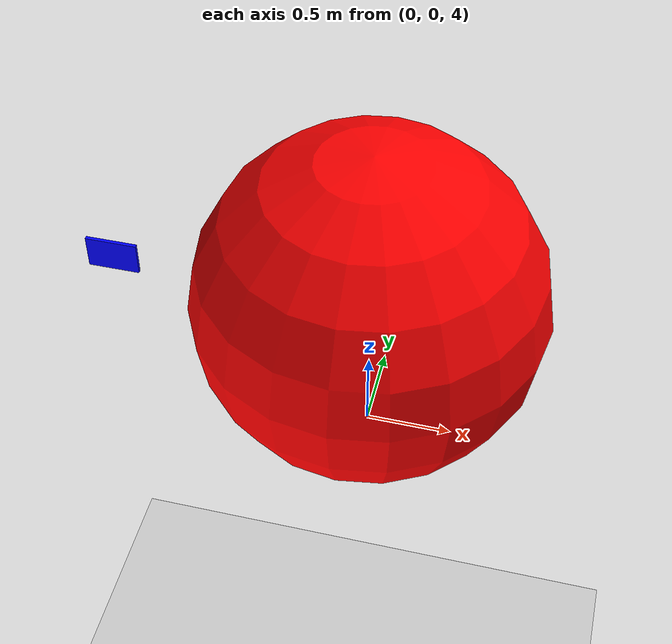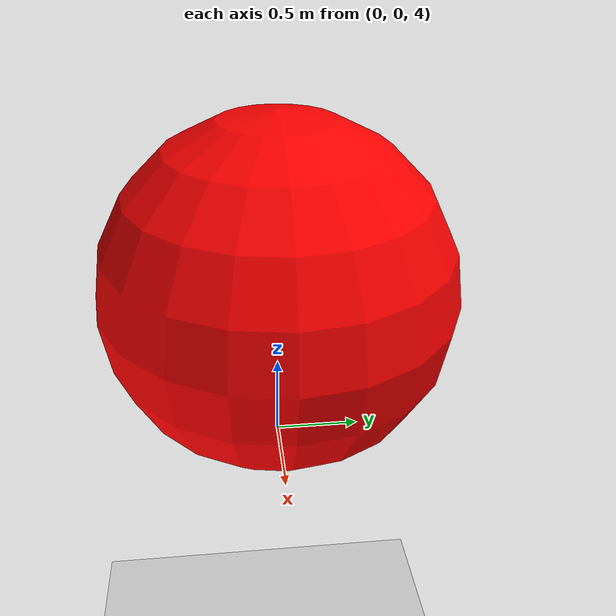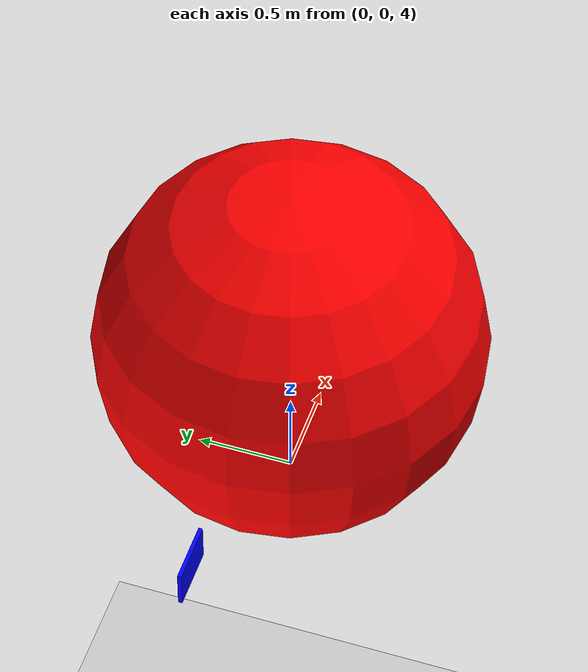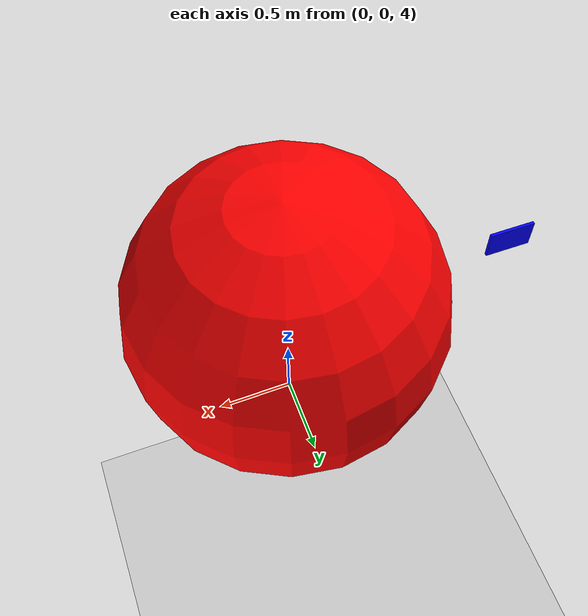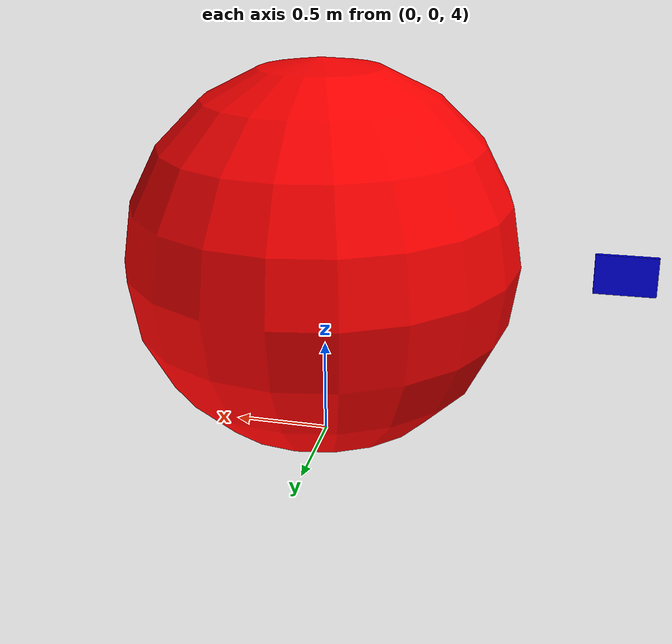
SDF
<?xml version="1.0" ?>
<sdf version="1.9">
  <world name="test_world">

    <!-- Physics settings -->
    <physics name="1ms" type="ignored">
      <max_step_size>0.001</max_step_size>
      <real_time_factor>1.0</real_time_factor>
    </physics>

    <!-- Required system plugins -->
    <plugin filename="gz-sim-physics-system" name="gz::sim::systems::Physics"/>
    <plugin filename="gz-sim-user-commands-system" name="gz::sim::systems::UserCommands"/>
    <plugin filename="gz-sim-scene-broadcaster-system" name="gz::sim::systems::SceneBroadcaster"/>

    <!-- Ground plane -->
    <model name="ground_plane">
      <static>true</static>
      <link name="link">
        <collision name="collision">
          <geometry>
            <plane>
              <normal>0 0 1</normal>
              <size>100 100</size>
            </plane>
          </geometry>
        </collision>
        <visual name="visual">
          <geometry>
            <plane>
              <normal>0 0 1</normal>
              <size>100 100</size>
            </plane>
          </geometry>
        </visual>
      </link>
    </model>

    <!-- Test model with plugins -->
    <model name="test_blimp">
      <pose>0 0 5 0 0 0</pose>

      <!-- Main body -->
      <link name="base_link">
        <inertial>
          <mass>5.0</mass>
          <inertia>
            <ixx>1</ixx>
            <ixy>0</ixy>
            <ixz>0</ixz>
            <iyy>1</iyy>
            <iyz>0</iyz>
            <izz>1</izz>
          </inertia>
        </inertial>
        <collision name="collision">
          <geometry>
            <sphere>
              <radius>1.0</radius>
            </sphere>
          </geometry>
        </collision>
        <visual name="visual">
          <geometry>
            <sphere>
              <radius>1.0</radius>
            </sphere>
          </geometry>
          <material>
            <ambient>1 0 0 1</ambient>
            <diffuse>1 0 0 1</diffuse>
          </material>
        </visual>
      </link>

      <!-- Test fin -->
      <link name="test_fin">
        <pose>-1.5 0 0 0 0 0</pose>
        <inertial>
          <mass>0.1</mass>
          <inertia>
            <ixx>0.01</ixx>
            <ixy>0</ixy>
            <ixz>0</ixz>
            <iyy>0.01</iyy>
            <iyz>0</iyz>
            <izz>0.01</izz>
          </inertia>
        </inertial>
        <collision name="collision">
          <geometry>
            <box>
              <size>0.3 0.02 0.2</size>
            </box>
          </geometry>
        </collision>
        <visual name="visual">
          <geometry>
            <box>
              <size>0.3 0.02 0.2</size>
            </box>
          </geometry>
          <material>
            <ambient>0 0 1 1</ambient>
            <diffuse>0 0 1 1</diffuse>
          </material>
        </visual>
      </link>

      <!-- Joint -->
      <joint name="fin_joint" type="revolute">
        <parent>base_link</parent>
        <child>test_fin</child>
        <axis>
          <xyz>0 0 1</xyz>
          <limit>
            <lower>-0.5</lower>
            <upper>0.5</upper>
          </limit>
        </axis>
      </joint>

      <!-- NormWind Plugin -->
      <plugin filename="libnormwind_plugin.so" name="normwind_plugin::NormWindPlugin">
        <robotNamespace>test</robotNamespace>
        <linkName>base_link</linkName>
        <windSpeedMean>2.0</windSpeedMean>
        <windTurbulenceLevel>1</windTurbulenceLevel>
        <windDirectionMean>1.0 0.0 0.0</windDirectionMean>
      </plugin>

      <!-- DynamicVolume Plugin -->
      <plugin filename="libdynamicvolume_plugin.so" name="dynamicvolume_plugin::DynamicVolumePlugin">
        <robotNamespace>test</robotNamespace>
        <linkName>base_link</linkName>
        <fluidDensity>1.225</fluidDensity>
        <heliumMassKG>1.0</heliumMassKG>
        <link name="base_link">
          <volume>4.189</volume>
          <center_of_volume>0 0 0</center_of_volume>
        </link>
      </plugin>

      <!-- FinLiftDrag Plugin -->
      <plugin filename="libfinliftdrag_plugin.so" name="finliftdrag_plugin::FinLiftDragPlugin">
        <robotNamespace>test</robotNamespace>
        <link_name>test_fin</link_name>
        <control_joint_name>fin_joint</control_joint_name>
        <area>0.06</area>
        <cla>2.0</cla>
        <cda>0.1</cda>
      </plugin>
    </model>

    <!-- Lighting -->
    <light type="directional" name="sun">
      <cast_shadows>true</cast_shadows>
      <pose>0 0 10 0 0 0</pose>
      <diffuse>0.8 0.8 0.8 1</diffuse>
      <specular>0.2 0.2 0.2 1</specular>
      <direction>-0.5 0.1 -0.9</direction>
    </light>

  </world>
</sdf>
